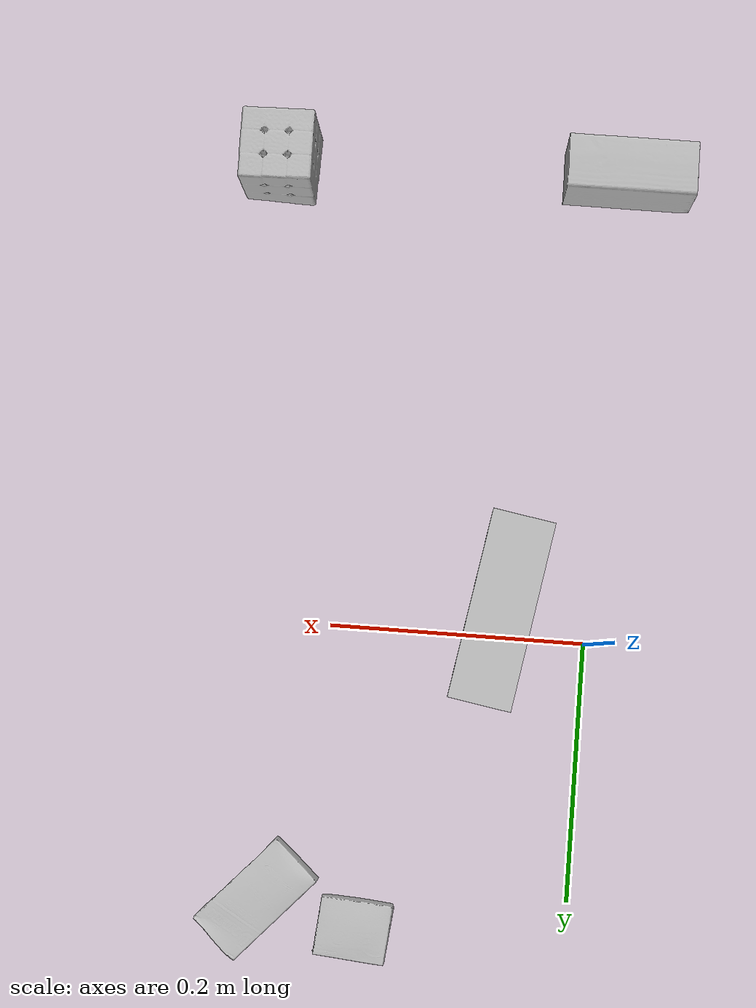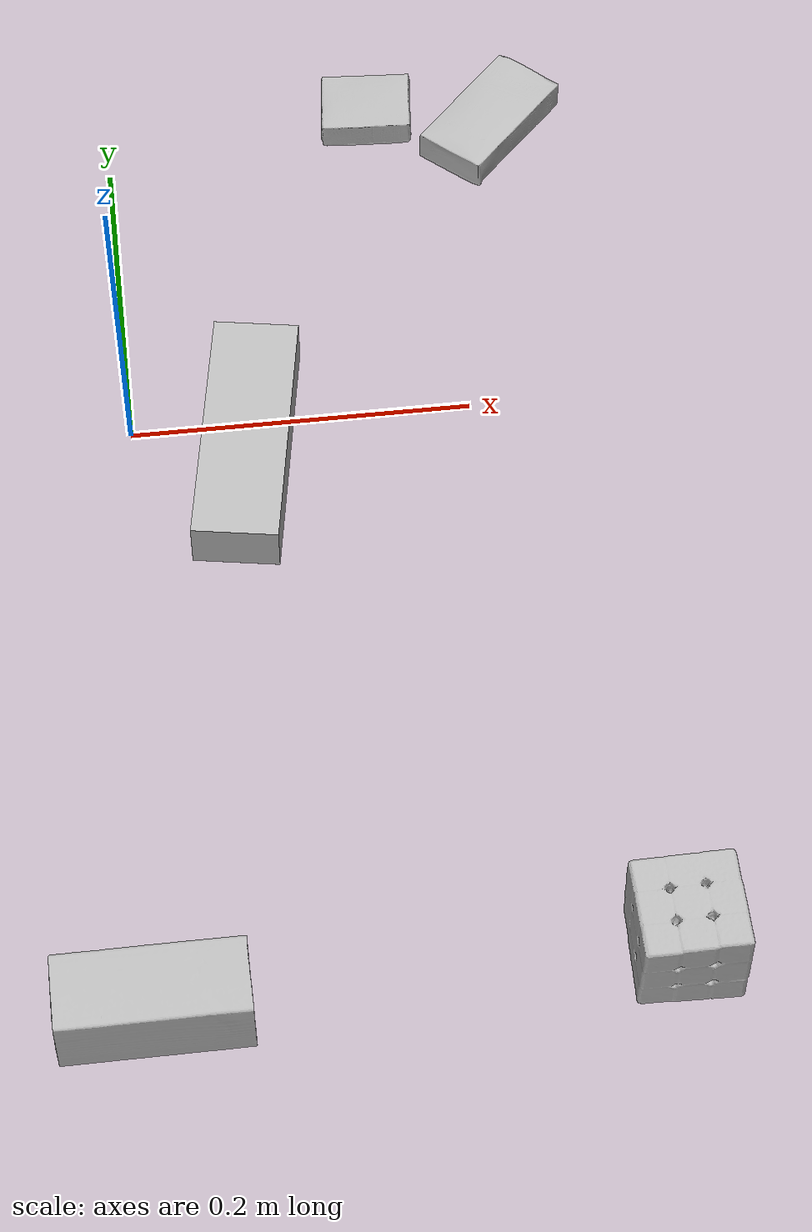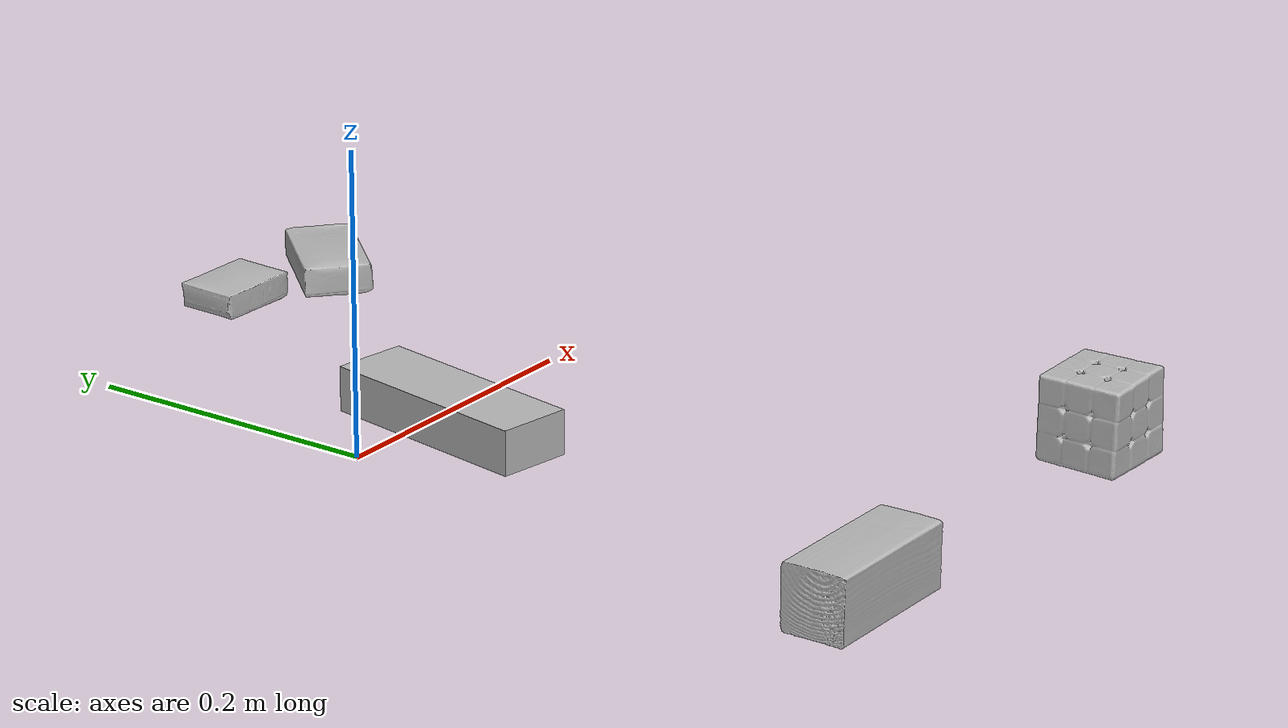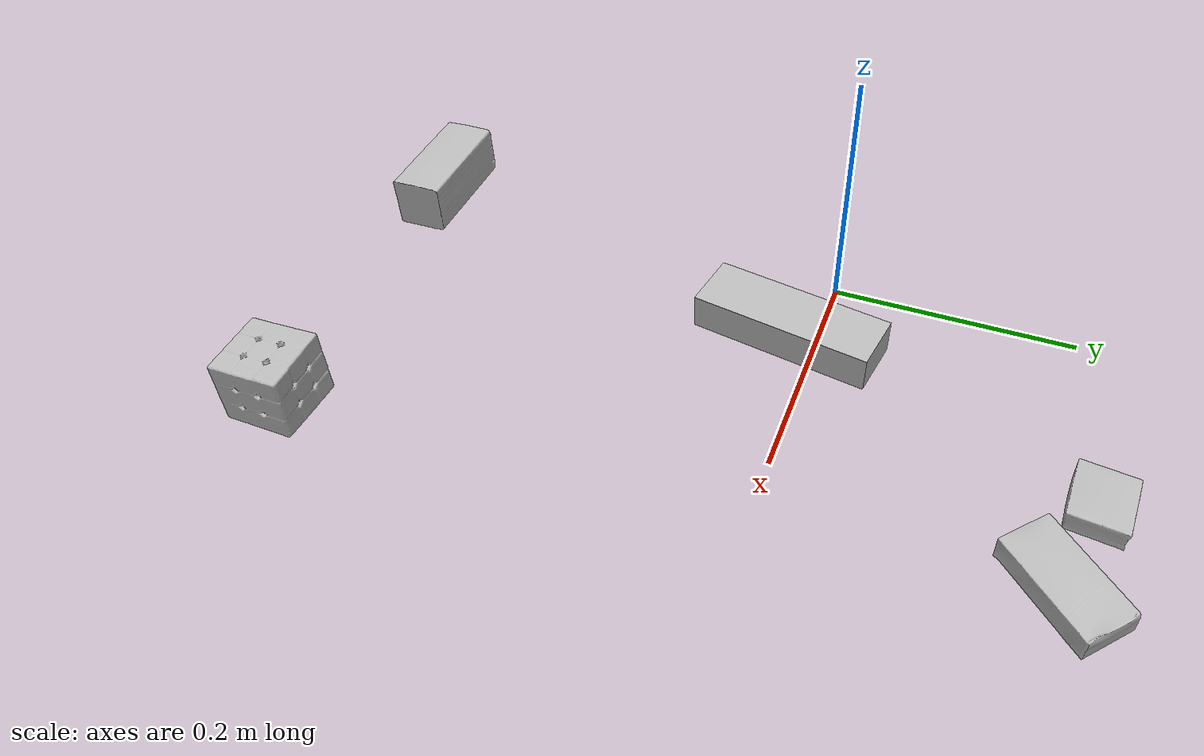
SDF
<sdf version="1.4">
  <world name="default">
    <light name="light1" type="point">
      <pose>0 0 1 0 0 0</pose>
      <diffuse>3 3 3 1</diffuse>
      <specular>3 3 3 1</specular>
    </light>
    <light name="light2" type="point">
      <pose>0 0.5 2 0 0 0</pose>
      <diffuse>1 1 1 1</diffuse>
      <specular>1 1 1 1</specular>
    </light>
    <light name="light3" type="point">
      <pose>0 0.5 2 0 0 0</pose>
      <diffuse>3 3 3 1</diffuse>
      <specular>3 3 3 1</specular>
    </light>
    <scene>
      <ambient>0.7 0.7 0.7</ambient>
    </scene>
    <model name="box1">
      <link name="link_box1">
        <collision name="default">
          <geometry>
            <mesh>
              <uri>model://wood_block/collision_meshes/collision.obj</uri>
              <scale>0.5 0.5 0.5</scale>
            </mesh>
          </geometry>
          <surface>
            <friction>
              <ode>
                <mu>0.5</mu>
                <mu2>0.5</mu2>
              </ode>
            </friction>
          <contact>
        <ode>
            <max_vel>0</max_vel>
            <min_depth>0.0001</min_depth>
            <kp>1e8</kp>
        </ode>
    </contact></surface>
        </collision>
        <visual name="default">
          <geometry>
            <mesh>
              <uri>model://wood_block/visual_meshes/visual.dae</uri>
              <scale>0.5 0.5 0.5</scale>
            </mesh>
          </geometry>
        </visual>
        <inertial>
          <mass>0.21249504387378693</mass>
          <pose>-2.906657528001233e-06 -0.00028540470520965755 0.00013204290007706732 -0.05220867383734612 -0.005192696375656893 -0.006861378651330705</pose>
          <inertia>
            <ixx>7.108762e-05</ixx>
            <iyy>0.00022456584</iyy>
            <izz>0.00022372584</izz>
            <ixy>0</ixy>
            <ixz>0</ixz>
            <iyz>0</iyz>
          </inertia>
        </inertial>
      </link>
      <pose>-0.011849204078316689 -0.37794268131256104 0.022629262879490852 -0.005208462635154069 0.0057187018272484005 -3.136428615239187</pose>
    </model>
    <model name="box2">
      <link name="link_box2">
        <collision name="default">
          <geometry>
            <mesh>
              <uri>model://sugar_box/collision_meshes/collision.obj</uri>
              <scale>0.5 0.5 0.5</scale>
            </mesh>
          </geometry>
          <surface>
            <friction>
              <ode>
                <mu>0.5</mu>
                <mu2>0.5</mu2>
              </ode>
            </friction>
          <contact>
        <ode>
            <max_vel>0</max_vel>
            <min_depth>0.0001</min_depth>
            <kp>1e8</kp>
        </ode>
    </contact></surface>
        </collision>
        <visual name="default">
          <geometry>
            <mesh>
              <uri>model://sugar_box/visual_meshes/visual.dae</uri>
              <scale>0.5 0.5 0.5</scale>
            </mesh>
          </geometry>
        </visual>
        <inertial>
          <mass>0.11089310050010681</mass>
          <pose>0.0005171863595023751 1.924554817378521e-05 -0.00018182402709499002 -0.0004046262999979174 0.001050663638672674 0.002615379254561693</pose>
          <inertia>
            <ixx>2.3098954e-05</ixx>
            <iyy>7.4660566e-05</iyy>
            <izz>8.9377616e-05</izz>
            <ixy>0</ixy>
            <ixz>0</ixz>
            <iyz>0</iyz>
          </inertia>
        </inertial>
      </link>
      <pose>0.23909252882003784 0.21205338835716248 0.011399302631616592 0.000775380906127729 -0.023433336313370873 -2.3179171632189166</pose>
    </model>
    <model name="box3">
      <link name="link_box3">
        <collision name="default">
          <geometry>
            <mesh>
              <uri>model://jenga/collision_meshes/collision.obj</uri>
              <scale>1.0 1.0 1.0</scale>
            </mesh>
          </geometry>
          <surface>
            <friction>
              <ode>
                <mu>0.5</mu>
                <mu2>0.5</mu2>
              </ode>
            </friction>
          <contact>
        <ode>
            <max_vel>0</max_vel>
            <min_depth>0.0001</min_depth>
            <kp>1e8</kp>
        </ode>
    </contact></surface>
        </collision>
        <visual name="default">
          <geometry>
            <mesh>
              <uri>model://jenga/visual_meshes/visual.dae</uri>
              <scale>1.0 1.0 1.0</scale>
            </mesh>
          </geometry>
        </visual>
        <inertial>
          <mass>0.163609579205513</mass>
          <pose>-2.502855807051674e-07 -0.0001025000965455547 -4.0923401684267446e-05 0.0 -7.34215461761844e-07 0.0</pose>
          <inertia>
            <ixx>4.527474e-05</ixx>
            <iyy>0.00030678045</iyy>
            <izz>0.0003275142</izz>
            <ixy>0</ixy>
            <ixz>0</ixz>
            <iyz>0</iyz>
          </inertia>
        </inertial>
      </link>
      <pose>0.06661438196897507 -0.02207270823419094 0.014999995008111 6.951956725825809e-09 -3.4634001263065346e-09 1.4017172351318883</pose>
    </model>
    <model name="box4">
      <link name="link_box4">
        <collision name="default">
          <geometry>
            <mesh>
              <uri>model://rubiks_cube/collision_meshes/collision.obj</uri>
              <scale>1.0 1.0 1.0</scale>
            </mesh>
          </geometry>
          <surface>
            <friction>
              <ode>
                <mu>0.5</mu>
                <mu2>0.5</mu2>
              </ode>
            </friction>
          <contact>
        <ode>
            <max_vel>0</max_vel>
            <min_depth>0.0001</min_depth>
            <kp>1e8</kp>
        </ode>
    </contact></surface>
        </collision>
        <visual name="default">
          <geometry>
            <mesh>
              <uri>model://rubiks_cube/visual_meshes/visual.dae</uri>
              <scale>1.0 1.0 1.0</scale>
            </mesh>
          </geometry>
        </visual>
        <inertial>
          <mass>0.25540637969970703</mass>
          <pose>2.6721041649580002e-05 5.2569666877388954e-05 -7.264316082000732e-06 -0.054671713185757496 -0.09814043055608018 -0.034455401135126476</pose>
          <inertia>
            <ixx>0.00014112917</ixx>
            <iyy>0.000140471</iyy>
            <izz>0.00014229867</izz>
            <ixy>0</ixy>
            <ixz>0</ixz>
            <iyz>0</iyz>
          </inertia>
        </inertial>
      </link>
      <pose>0.2678757607936859 -0.3695559799671173 0.028678985312581062 -2.6649206479088178e-06 -7.92824660777706e-07 -3.1327024772501</pose>
    </model>
    <model name="box5">
      <link name="link_box5">
        <collision name="default">
          <geometry>
            <mesh>
              <uri>model://pudding_box/collision_meshes/collision.obj</uri>
              <scale>0.5 0.5 0.5</scale>
            </mesh>
          </geometry>
          <surface>
            <friction>
              <ode>
                <mu>0.5</mu>
                <mu2>0.5</mu2>
              </ode>
            </friction>
          <contact>
        <ode>
            <max_vel>0</max_vel>
            <min_depth>0.0001</min_depth>
            <kp>1e8</kp>
        </ode>
    </contact></surface>
        </collision>
        <visual name="default">
          <geometry>
            <mesh>
              <uri>model://pudding_box/visual_meshes/visual.dae</uri>
              <scale>0.5 0.5 0.5</scale>
            </mesh>
          </geometry>
        </visual>
        <inertial>
          <mass>0.04848850890994072</mass>
          <pose>0.00024474109522998333 0.000403394311433658 -0.0002594413817860186 0.0052131017882315455 -0.0066037973363940366 0.020079830752013892</pose>
          <inertia>
            <ixx>1.370344e-05</ixx>
            <iyy>9.219772e-06</iyy>
            <izz>2.023671e-05</izz>
            <ixy>0</ixy>
            <ixz>0</ixz>
            <iyz>0</iyz>
          </inertia>
        </inertial>
      </link>
      <pose>0.16287435591220856 0.2299138903617859 0.009862903505563736 0.02234851086075155 -0.011391696036302051 -1.6652783253701335</pose>
    </model>
  <physics type="ode">
      <max_contacts>50</max_contacts>
      <ode>
        <solver>
          <type>quick</type>
          <iters>75</iters>
        </solver>
        <constraints>
          <contact_max_correcting_vel>0</contact_max_correcting_vel>
          <contact_surface_layer>0</contact_surface_layer>
        </constraints>
      </ode>
    </physics></world>
</sdf>
